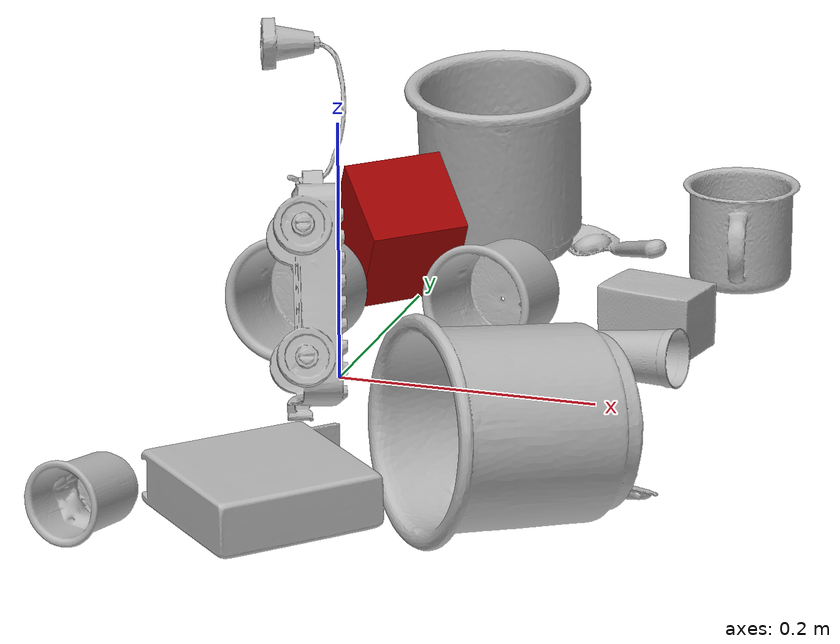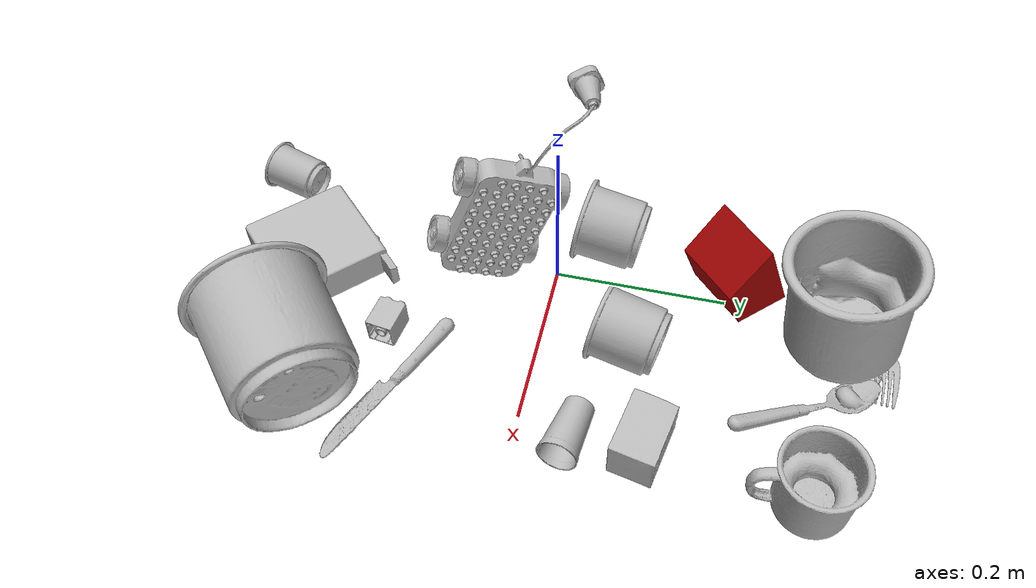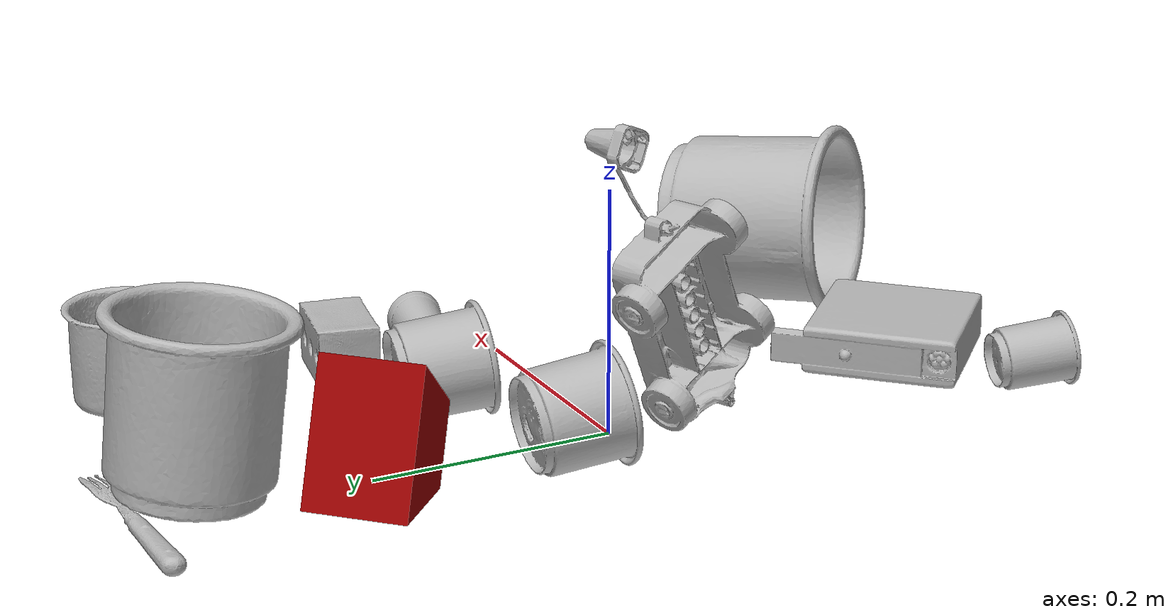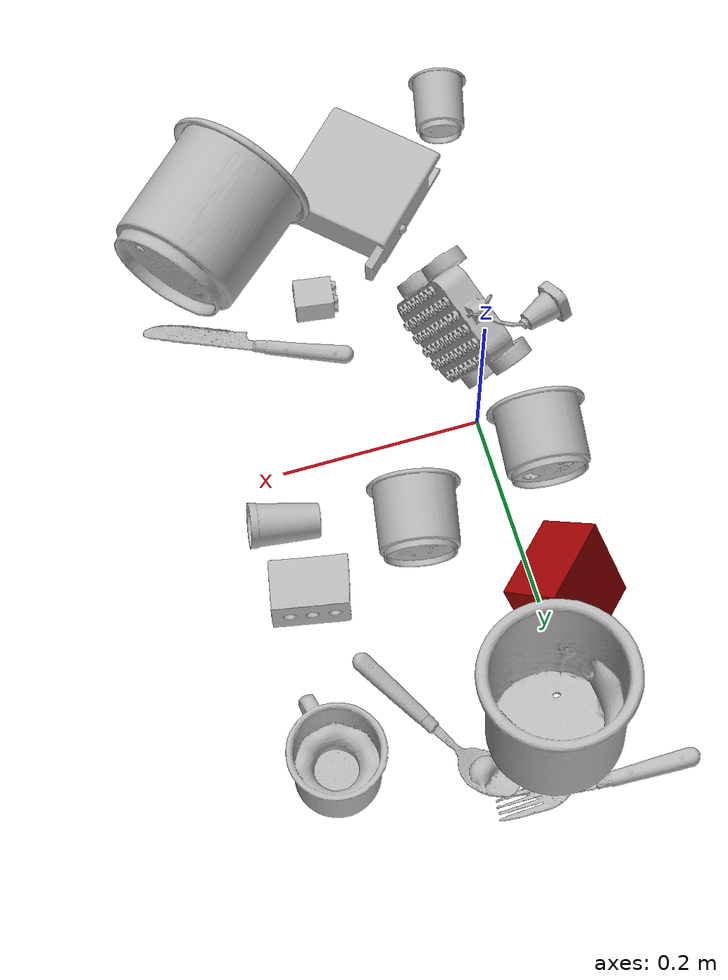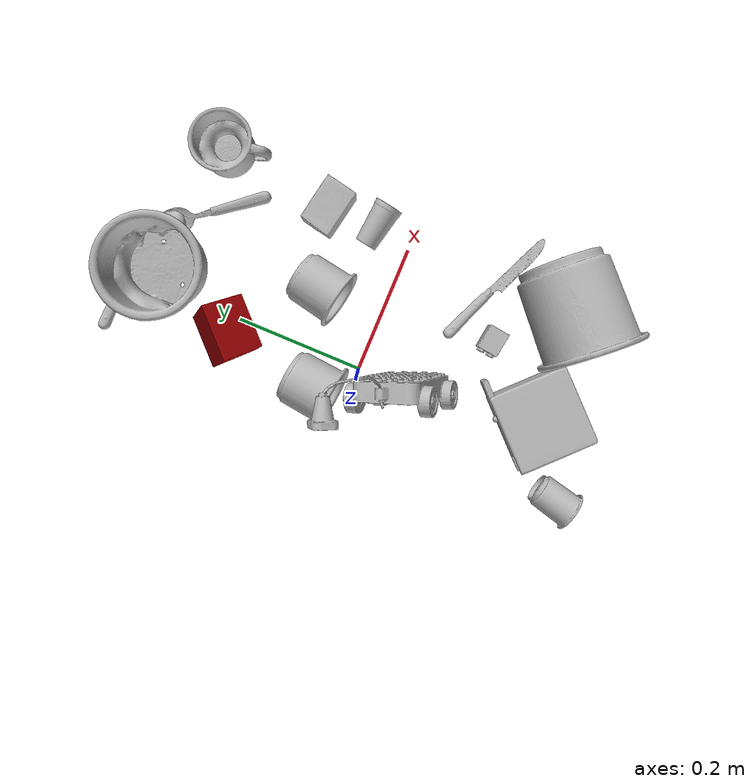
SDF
<sdf version="1.4">
  <world name="default">
    <light name="light1" type="point">
      <pose>0 0 1 0 0 0</pose>
      <diffuse>3 3 3 1</diffuse>
      <specular>3 3 3 1</specular>
    </light>
    <light name="light2" type="point">
      <pose>0 0.5 2 0 0 0</pose>
      <diffuse>1 1 1 1</diffuse>
      <specular>1 1 1 1</specular>
    </light>
    <light name="light3" type="point">
      <pose>0 0.5 2 0 0 0</pose>
      <diffuse>3 3 3 1</diffuse>
      <specular>3 3 3 1</specular>
    </light>
    <scene>
      <ambient>0.7 0.7 0.7</ambient>
    </scene>
    <model name="cup1">
      <link name="link_cup1">
        <collision name="default">
          <geometry>
            <mesh>
              <uri>model://i_cups/collision_meshes/collision.obj</uri>
              <scale>1.0 1.0 1.0</scale>
            </mesh>
          </geometry>
          <surface>
            <friction>
              <ode>
                <mu>0.5</mu>
                <mu2>0.5</mu2>
              </ode>
            </friction>
          <contact>
        <ode>
            <max_vel>0</max_vel>
            <min_depth>0.0001</min_depth>
            <kp>1e8</kp>
        </ode>
    </contact></surface>
        </collision>
        <visual name="default">
          <geometry>
            <mesh>
              <uri>model://i_cups/visual_meshes/visual.dae</uri>
              <scale>1.0 1.0 1.0</scale>
            </mesh>
          </geometry>
        </visual>
        <inertial>
          <mass>0.06118306145071983</mass>
          <pose>0.00011240330786677077 0.00016797454736661166 -0.0008579033892601728 -0.02898356853937009 -0.0398729445813228 -0.3459020996231002</pose>
          <inertia>
            <ixx>8.470886e-05</ixx>
            <iyy>8.5455235e-05</iyy>
            <izz>9.467588e-05</izz>
            <ixy>0</ixy>
            <ixz>0</ixz>
            <iyz>0</iyz>
          </inertia>
        </inertial>
      </link>
      <pose>-0.04802236333489418 0.05558158829808235 0.04488014802336693 1.356490807126038 0.9636983806088107 -0.27541504337480444</pose>
    </model>
    <model name="silverware1">
      <link name="link_silverware1">
        <collision name="default">
          <geometry>
            <mesh>
              <uri>model://fork/collision_meshes/collision.obj</uri>
              <scale>1.0 1.0 1.0</scale>
            </mesh>
          </geometry>
          <surface>
            <friction>
              <ode>
                <mu>0.5</mu>
                <mu2>0.5</mu2>
              </ode>
            </friction>
          <contact>
        <ode>
            <max_vel>0</max_vel>
            <min_depth>0.0001</min_depth>
            <kp>1e8</kp>
        </ode>
    </contact></surface>
        </collision>
        <visual name="default">
          <geometry>
            <mesh>
              <uri>model://fork/visual_meshes/visual.dae</uri>
              <scale>1.0 1.0 1.0</scale>
            </mesh>
          </geometry>
        </visual>
        <inertial>
          <mass>0.031184576451778412</mass>
          <pose>-0.02957005426287651 0.00046588247641921043 0.0003218861820641905 -0.013551007459636681 -0.010977840933376642 0.014453907264632249</pose>
          <inertia>
            <ixx>1.0931959e-06</ixx>
            <iyy>8.1413935e-05</iyy>
            <izz>8.1902916e-05</izz>
            <ixy>0</ixy>
            <ixz>0</ixz>
            <iyz>0</iyz>
          </inertia>
        </inertial>
      </link>
      <pose>0.0035817772150039673 0.3885257840156555 0.007447143085300922 -3.063497301234973 0.0028451876354976353 -0.015065872953356362</pose>
    </model>
    <model name="cup2">
      <link name="link_cup2">
        <collision name="default">
          <geometry>
            <mesh>
              <uri>model://cup_small/collision_meshes/collision.obj</uri>
              <scale>1.0 1.0 1.0</scale>
            </mesh>
          </geometry>
          <surface>
            <friction>
              <ode>
                <mu>0.5</mu>
                <mu2>0.5</mu2>
              </ode>
            </friction>
          <contact>
        <ode>
            <max_vel>0</max_vel>
            <min_depth>0.0001</min_depth>
            <kp>1e8</kp>
        </ode>
    </contact></surface>
        </collision>
        <visual name="default">
          <geometry>
            <mesh>
              <uri>model://cup_small/visual_meshes/visual.dae</uri>
              <scale>1.0 1.0 1.0</scale>
            </mesh>
          </geometry>
        </visual>
        <inertial>
          <mass>0.03407767415046692</mass>
          <pose>0.0001048250705935061 -0.00033778452780097723 -0.010742825455963612 -0.011493231776776816 -0.015280154496379641 -0.5058119732839097</pose>
          <inertia>
            <ixx>2.0064415e-05</ixx>
            <iyy>2.0167918e-05</iyy>
            <izz>9.059144e-06</izz>
            <ixy>0</ixy>
            <ixz>0</ixz>
            <iyz>0</iyz>
          </inertia>
        </inertial>
      </link>
      <pose>0.21536967158317566 0.05903145298361778 0.020076138898730278 1.4134972582516718 0.9851757928096966 1.2709108000655296</pose>
    </model>
    <model name="silverware2">
      <link name="link_silverware2">
        <collision name="default">
          <geometry>
            <mesh>
              <uri>model://spoon/collision_meshes/collision.obj</uri>
              <scale>1.0 1.0 1.0</scale>
            </mesh>
          </geometry>
          <surface>
            <friction>
              <ode>
                <mu>0.5</mu>
                <mu2>0.5</mu2>
              </ode>
            </friction>
          <contact>
        <ode>
            <max_vel>0</max_vel>
            <min_depth>0.0001</min_depth>
            <kp>1e8</kp>
        </ode>
    </contact></surface>
        </collision>
        <visual name="default">
          <geometry>
            <mesh>
              <uri>model://spoon/visual_meshes/visual.dae</uri>
              <scale>1.0 1.0 1.0</scale>
            </mesh>
          </geometry>
        </visual>
        <inertial>
          <mass>0.016614587977528572</mass>
          <pose>-0.005526317749172449 -0.0016034182626754045 -0.0007271657232195139 0.03521671066550848 -0.039065848782153245 0.0061506117821598484</pose>
          <inertia>
            <ixx>9.241303e-07</ixx>
            <iyy>6.321795e-05</iyy>
            <izz>6.367369e-05</izz>
            <ixy>0</ixy>
            <ixz>0</ixz>
            <iyz>0</iyz>
          </inertia>
        </inertial>
      </link>
      <pose>0.1349809616804123 0.2974386215209961 0.024304866790771484 -0.23703757438083212 0.29835320601608684 2.162545226900233</pose>
    </model>
    <model name="cup3">
      <link name="link_cup3">
        <collision name="default">
          <geometry>
            <mesh>
              <uri>model://mug/collision_meshes/collision.obj</uri>
              <scale>1.0 1.0 1.0</scale>
            </mesh>
          </geometry>
          <surface>
            <friction>
              <ode>
                <mu>0.5</mu>
                <mu2>0.5</mu2>
              </ode>
            </friction>
          <contact>
        <ode>
            <max_vel>0</max_vel>
            <min_depth>0.0001</min_depth>
            <kp>1e8</kp>
        </ode>
    </contact></surface>
        </collision>
        <visual name="default">
          <geometry>
            <mesh>
              <uri>model://mug/visual_meshes/visual.dae</uri>
              <scale>1.0 1.0 1.0</scale>
            </mesh>
          </geometry>
        </visual>
        <inertial>
          <mass>0.2187051922082901</mass>
          <pose>0.009571668691933155 0.0008143252925947309 -0.0109473317861557 -0.1298317614392908 0.08737757629698793 0.05507296169044089</pose>
          <inertia>
            <ixx>0.00021724429</ixx>
            <iyy>0.00024264908</iyy>
            <izz>0.00028062687</izz>
            <ixy>0</ixy>
            <ixz>0</ixz>
            <iyz>0</iyz>
          </inertia>
        </inertial>
      </link>
      <pose>0.23687388002872467 0.3015277087688446 0.0409492552280426 -1.827478315948936e-05 5.7100254815427777e-05 1.730697576503478</pose>
    </model>
    <model name="silverware3">
      <link name="link_silverware3">
        <collision name="default">
          <geometry>
            <mesh>
              <uri>model://knife/collision_meshes/collision.obj</uri>
              <scale>1.0 1.0 1.0</scale>
            </mesh>
          </geometry>
          <surface>
            <friction>
              <ode>
                <mu>0.5</mu>
                <mu2>0.5</mu2>
              </ode>
            </friction>
          <contact>
        <ode>
            <max_vel>0</max_vel>
            <min_depth>0.0001</min_depth>
            <kp>1e8</kp>
        </ode>
    </contact></surface>
        </collision>
        <visual name="default">
          <geometry>
            <mesh>
              <uri>model://knife/visual_meshes/visual.dae</uri>
              <scale>1.0 1.0 1.0</scale>
            </mesh>
          </geometry>
        </visual>
        <inertial>
          <mass>0.02527560666203499</mass>
          <pose>-0.02378525398671627 0.0015275124460458755 5.062016498413868e-05 0.07305987488321217 0.01724841707462807 -0.007409821427235137</pose>
          <inertia>
            <ixx>7.174241e-07</ixx>
            <iyy>9.710476e-05</iyy>
            <izz>9.733581e-05</izz>
            <ixy>0</ixy>
            <ixz>0</ixz>
            <iyz>0</iyz>
          </inertia>
        </inertial>
      </link>
      <pose>0.19591785967350006 -0.14762039482593536 0.008136847987771034 -0.2817431163150128 -0.008871540465523506 -0.41218141094059657</pose>
    </model>
    <model name="cup4">
      <link name="link_cup4">
        <collision name="default">
          <geometry>
            <mesh>
              <uri>model://f_cups/collision_meshes/collision.obj</uri>
              <scale>2.0 2.0 2.0</scale>
            </mesh>
          </geometry>
          <surface>
            <friction>
              <ode>
                <mu>0.5</mu>
                <mu2>0.5</mu2>
              </ode>
            </friction>
          <contact>
        <ode>
            <max_vel>0</max_vel>
            <min_depth>0.0001</min_depth>
            <kp>1e8</kp>
        </ode>
    </contact></surface>
        </collision>
        <visual name="default">
          <geometry>
            <mesh>
              <uri>model://f_cups/visual_meshes/visual.dae</uri>
              <scale>2.0 2.0 2.0</scale>
            </mesh>
          </geometry>
        </visual>
        <inertial>
          <mass>0.45639780163764954</mass>
          <pose>-0.006342936772853136 -0.0012480145087465644 -0.007311072666198015 0.7862311529960513 -0.2607925047248709 -0.18237200478465204</pose>
          <inertia>
            <ixx>0.0017161043</ixx>
            <iyy>0.0018002132</iyy>
            <izz>0.0018740727</izz>
            <ixy>0</ixy>
            <ixz>0</ixz>
            <iyz>0</iyz>
          </inertia>
        </inertial>
      </link>
      <pose>0.2083352506160736 -0.2566130459308624 0.07439762353897095 -1.2567855376031627 -1.2789946536858057 1.990430073772419</pose>
    </model>
    <model name="cup41">
      <link name="link_cup41">
        <collision name="default">
          <geometry>
            <mesh>
              <uri>model://b_cups/collision_meshes/collision.obj</uri>
              <scale>1.0 1.0 1.0</scale>
            </mesh>
          </geometry>
          <surface>
            <friction>
              <ode>
                <mu>0.5</mu>
                <mu2>0.5</mu2>
              </ode>
            </friction>
          <contact>
        <ode>
            <max_vel>0</max_vel>
            <min_depth>0.0001</min_depth>
            <kp>1e8</kp>
        </ode>
    </contact></surface>
        </collision>
        <visual name="default">
          <geometry>
            <mesh>
              <uri>model://b_cups/visual_meshes/visual.dae</uri>
              <scale>1.0 1.0 1.0</scale>
            </mesh>
          </geometry>
        </visual>
        <inertial>
          <mass>0.02191556617617607</mass>
          <pose>0.0005182005115784705 0.0018058598507195711 -0.0013381809694692492 0.11356347292067202 0.038725069075056226 -0.34569439603942165</pose>
          <inertia>
            <ixx>1.4345273e-05</ixx>
            <iyy>1.4072923e-05</iyy>
            <izz>1.2071279e-05</izz>
            <ixy>0</ixy>
            <ixz>0</ixz>
            <iyz>0</iyz>
          </inertia>
        </inertial>
      </link>
      <pose>-0.06695437431335449 -0.3492051362991333 0.027660446241497993 -1.4763333772924705 -0.12793563635354924 2.8948230699706183</pose>
    </model>
    <model name="cup5">
      <link name="link_cup5">
        <collision name="default">
          <geometry>
            <mesh>
              <uri>model://e_cups/collision_meshes/collision.obj</uri>
              <scale>2.0 2.0 2.0</scale>
            </mesh>
          </geometry>
          <surface>
            <friction>
              <ode>
                <mu>0.5</mu>
                <mu2>0.5</mu2>
              </ode>
            </friction>
          <contact>
        <ode>
            <max_vel>0</max_vel>
            <min_depth>0.0001</min_depth>
            <kp>1e8</kp>
        </ode>
    </contact></surface>
        </collision>
        <visual name="default">
          <geometry>
            <mesh>
              <uri>model://e_cups/visual_meshes/visual.dae</uri>
              <scale>2.0 2.0 2.0</scale>
            </mesh>
          </geometry>
        </visual>
        <inertial>
          <mass>0.30448246002197266</mass>
          <pose>0.0022711469791829586 0.005759572610259056 -0.00776594178751111 0.6952384510578399 0.08767941436067322 -0.5235260729612989</pose>
          <inertia>
            <ixx>0.0010739095</ixx>
            <iyy>0.001122389</iyy>
            <izz>0.0010267813</izz>
            <ixy>0</ixy>
            <ixz>0</ixz>
            <iyz>0</iyz>
          </inertia>
        </inertial>
      </link>
      <pose>0.029358644038438797 0.32764020562171936 0.07566982507705688 0.04008585756679725 -0.10274016494317495 1.1486949484365974</pose>
    </model>
    <model name="cup51">
      <link name="link_cup51">
        <collision name="default">
          <geometry>
            <mesh>
              <uri>model://h_cups/collision_meshes/collision.obj</uri>
              <scale>1.0 1.0 1.0</scale>
            </mesh>
          </geometry>
          <surface>
            <friction>
              <ode>
                <mu>0.5</mu>
                <mu2>0.5</mu2>
              </ode>
            </friction>
          <contact>
        <ode>
            <max_vel>0</max_vel>
            <min_depth>0.0001</min_depth>
            <kp>1e8</kp>
        </ode>
    </contact></surface>
        </collision>
        <visual name="default">
          <geometry>
            <mesh>
              <uri>model://h_cups/visual_meshes/visual.dae</uri>
              <scale>1.0 1.0 1.0</scale>
            </mesh>
          </geometry>
        </visual>
        <inertial>
          <mass>0.042455922812223434</mass>
          <pose>-2.703044083318673e-05 0.00023018660431262106 -0.0018405403243377805 -0.024361995264993386 0.06545231449212868 0.1288536550905752</pose>
          <inertia>
            <ixx>5.4829856e-05</ixx>
            <iyy>5.4175573e-05</iyy>
            <izz>5.7501496e-05</izz>
            <ixy>0</ixy>
            <ixz>0</ixz>
            <iyz>0</iyz>
          </inertia>
        </inertial>
      </link>
      <pose>0.09345673769712448 0.10064338892698288 0.04216371849179268 1.133790596589657 -1.332736405963233 0.23867530243675933</pose>
    </model>
    <model name="toy1">
      <link name="link_toy1">
        <collision name="default">
          <geometry>
            <mesh>
              <uri>model://f_lego_duplo/collision_meshes/collision.obj</uri>
              <scale>1.0 1.0 1.0</scale>
            </mesh>
          </geometry>
          <surface>
            <friction>
              <ode>
                <mu>0.5</mu>
                <mu2>0.5</mu2>
              </ode>
            </friction>
          <contact>
        <ode>
            <max_vel>0</max_vel>
            <min_depth>0.0001</min_depth>
            <kp>1e8</kp>
        </ode>
    </contact></surface>
        </collision>
        <visual name="default">
          <geometry>
            <mesh>
              <uri>model://f_lego_duplo/visual_meshes/visual.dae</uri>
              <scale>1.0 1.0 1.0</scale>
            </mesh>
          </geometry>
        </visual>
        <inertial>
          <mass>0.02241816557943821</mass>
          <pose>2.3694117771810852e-05 0.0001339316659141332 0.0018837875686585903 0.029838520561624126 -0.014425134948969536 -0.6756620822172864</pose>
          <inertia>
            <ixx>4.7370827e-06</ixx>
            <iyy>4.779284e-06</iyy>
            <izz>4.1119874e-06</izz>
            <ixy>0</ixy>
            <ixz>0</ixz>
            <iyz>0</iyz>
          </inertia>
        </inertial>
      </link>
      <pose>0.11834045499563217 -0.17188142240047455 0.016502002254128456 -1.5707937695573686 8.169993847119618e-07 1.425285795467686</pose>
    </model>
    <model name="toy2">
      <link name="link_toy2">
        <collision name="default">
          <geometry>
            <mesh>
              <uri>model://nine_hole_peg_test/collision_meshes/collision.obj</uri>
              <scale>1.0 1.0 1.0</scale>
            </mesh>
          </geometry>
          <surface>
            <friction>
              <ode>
                <mu>0.5</mu>
                <mu2>0.5</mu2>
              </ode>
            </friction>
          <contact>
        <ode>
            <max_vel>0</max_vel>
            <min_depth>0.0001</min_depth>
            <kp>1e8</kp>
        </ode>
    </contact></surface>
        </collision>
        <visual name="default">
          <geometry>
            <mesh>
              <uri>model://nine_hole_peg_test/visual_meshes/visual.dae</uri>
              <scale>1.0 1.0 1.0</scale>
            </mesh>
          </geometry>
        </visual>
        <inertial>
          <mass>0.9336897134780884</mass>
          <pose>-0.004617386497557163 -0.009647615253925323 2.6460686058271676e-05 -0.0014666796876693252 0.0007194179493738156 -0.6342417556307235</pose>
          <inertia>
            <ixx>0.0014599775</ixx>
            <iyy>0.0013631656</iyy>
            <izz>0.0025583105</izz>
            <ixy>0</ixy>
            <ixz>0</ixz>
            <iyz>0</iyz>
          </inertia>
        </inertial>
      </link>
      <pose>0.04209821671247482 -0.2752845287322998 0.020791035145521164 3.1415926488232477 -5.877676829465719e-09 2.365763830419029</pose>
    </model>
    <model name="toy3">
      <link name="link_toy3">
        <collision name="default">
          <geometry>
            <mesh>
              <uri>model://prism/collision_meshes/collision.obj</uri>
              <scale>1.0 1.0 1.0</scale>
            </mesh>
          </geometry>
          <surface>
            <friction>
              <ode>
                <mu>0.5</mu>
                <mu2>0.5</mu2>
              </ode>
            </friction>
          <contact>
        <ode>
            <max_vel>0</max_vel>
            <min_depth>0.0001</min_depth>
            <kp>1e8</kp>
        </ode>
    </contact></surface>
        </collision>
        <visual name="default">
          <geometry>
            <mesh>
              <uri>model://prism/visual_meshes/visual.dae</uri>
              <scale>1.0 1.0 1.0</scale>
            </mesh>
          </geometry>
        </visual>
        <inertial>
          <mass>0.45664992928504944</mass>
          <pose>-9.85359656624496e-05 -4.96157269935793e-07 -0.0033869100734591484 0.0 0.006559178903460961 0.0</pose>
          <inertia>
            <ixx>0.0004121209</ixx>
            <iyy>0.00049805344</iyy>
            <izz>0.0006100559</izz>
            <ixy>0</ixy>
            <ixz>0</ixz>
            <iyz>0</iyz>
          </inertia>
        </inertial>
      </link>
      <pose>-0.019050616770982742 0.20301567018032074 0.04270759969949722 -3.141592367842897 1.1942060321619477 2.3509418962968507</pose>
    </model>
    <model name="toy4">
      <link name="link_toy4">
        <collision name="default">
          <geometry>
            <mesh>
              <uri>model://g_lego_duplo/collision_meshes/collision.obj</uri>
              <scale>1.0 1.0 1.0</scale>
            </mesh>
          </geometry>
          <surface>
            <friction>
              <ode>
                <mu>0.5</mu>
                <mu2>0.5</mu2>
              </ode>
            </friction>
          <contact>
        <ode>
            <max_vel>0</max_vel>
            <min_depth>0.0001</min_depth>
            <kp>1e8</kp>
        </ode>
    </contact></surface>
        </collision>
        <visual name="default">
          <geometry>
            <mesh>
              <uri>model://g_lego_duplo/visual_meshes/visual.dae</uri>
              <scale>1.0 1.0 1.0</scale>
            </mesh>
          </geometry>
        </visual>
        <inertial>
          <mass>0.39620378613471985</mass>
          <pose>-0.05004769191145897 0.0017554654041305184 0.003880677744746208 0.010963058510667364 0.03810828654928447 -0.09653021192595126</pose>
          <inertia>
            <ixx>0.0005741041</ixx>
            <iyy>0.0017357017</iyy>
            <izz>0.0021714251</izz>
            <ixy>0</ixy>
            <ixz>0</ixz>
            <iyz>0</iyz>
          </inertia>
        </inertial>
      </link>
      <pose>-0.008226027712225914 -0.044662412256002426 0.1414809376001358 1.5885139118691312 -1.1703616794465153 1.9454307566094478</pose>
    </model>
    <model name="toy5">
      <link name="link_toy5">
        <collision name="default">
          <geometry>
            <mesh>
              <uri>model://foam_brick/collision_meshes/collision.obj</uri>
              <scale>1.0 1.0 1.0</scale>
            </mesh>
          </geometry>
          <surface>
            <friction>
              <ode>
                <mu>0.5</mu>
                <mu2>0.5</mu2>
              </ode>
            </friction>
          <contact>
        <ode>
            <max_vel>0</max_vel>
            <min_depth>0.0001</min_depth>
            <kp>1e8</kp>
        </ode>
    </contact></surface>
        </collision>
        <visual name="default">
          <geometry>
            <mesh>
              <uri>model://foam_brick/visual_meshes/visual.dae</uri>
              <scale>1.0 1.0 1.0</scale>
            </mesh>
          </geometry>
        </visual>
        <inertial>
          <mass>0.10564772039651871</mass>
          <pose>-0.00025224717683158815 0.00034584361128509045 -0.00025321010616607964 -0.29402271699624904 0.017274444128295662 -0.0007449905040366932</pose>
          <inertia>
            <ixx>4.6148893e-05</ixx>
            <iyy>7.367908e-05</iyy>
            <izz>7.4615455e-05</izz>
            <ixy>0</ixy>
            <ixz>0</ixz>
            <iyz>0</iyz>
          </inertia>
        </inertial>
      </link>
      <pose>0.21061080694198608 0.13632941246032715 0.025910701602697372 1.5828210183848426 -0.0003757698171865812 2.953468980370777</pose>
    </model>
  <physics type="ode">
      <max_contacts>50</max_contacts>
      <ode>
        <solver>
          <type>quick</type>
          <iters>75</iters>
        </solver>
        <constraints>
          <contact_max_correcting_vel>0</contact_max_correcting_vel>
          <contact_surface_layer>0</contact_surface_layer>
        </constraints>
      </ode>
    </physics></world>
</sdf>
